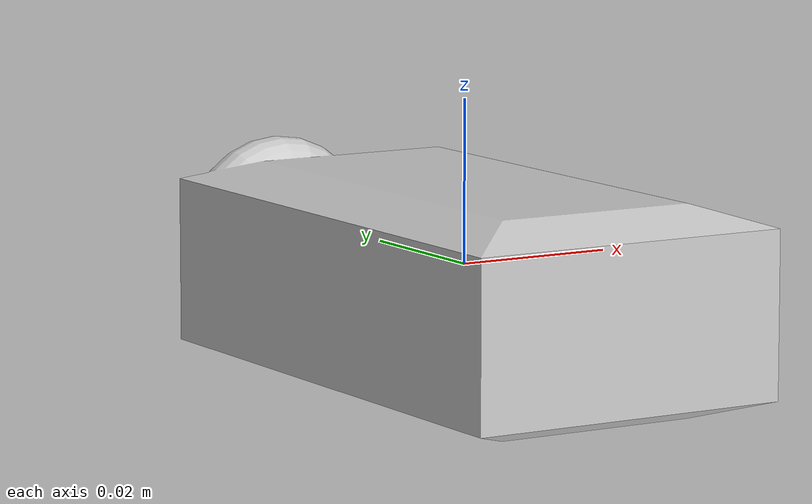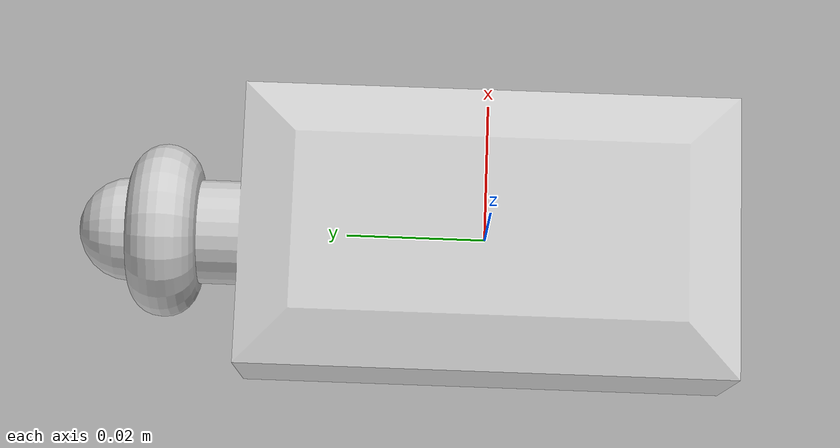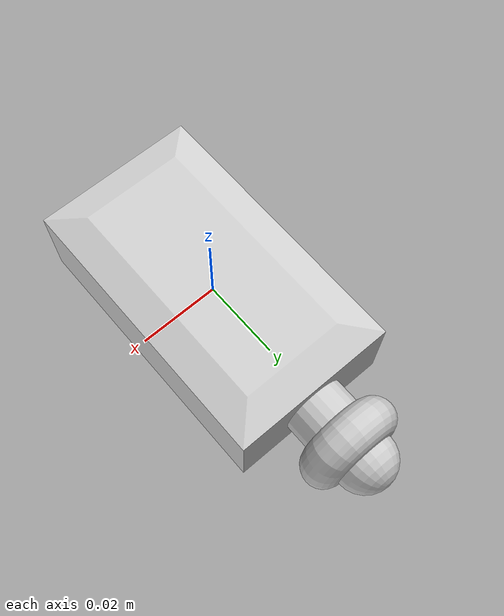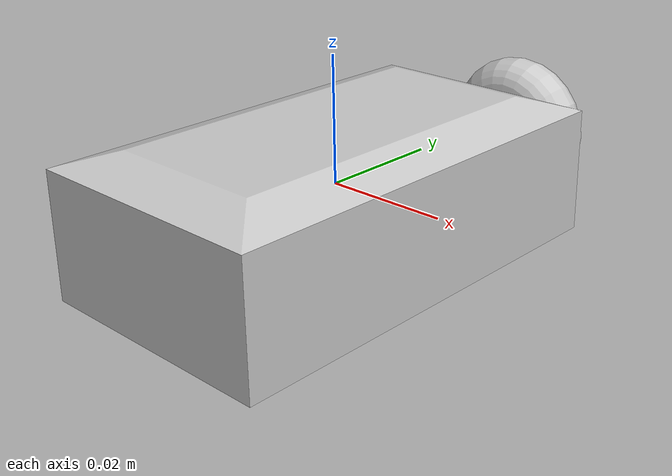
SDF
<?xml version="1.0" ?>
<sdf version="1.4">
  <model name="z_cos">
    <link name="z_cos_link">
      <inertial>
        <pose>-0.00 0.0 -0.005 0 0 0</pose>
        <mass>0.8</mass>
        <inertia>
          <ixx>0.001667</ixx>
	  <ixy>0.0</ixy>
	  <ixz>0.0</ixz>
	  <iyy>0.001667</iyy>
	  <iyz>0.0</iyz>
	  <izz>0.001667</izz>
	</inertia>
      </inertial>

      <visual name="z_cos_visual">
        <pose>-0.02 -0.036 0.01 -1.57079632679489 0 0 </pose>
        <material>
	  <lighting>1</lighting>
	  <ambient>0.2 0.2 0.2 1</ambient>
	  <diffuse>0.8 0.8 0.8 1</diffuse>
	  <specular>0.2 0.2 0.2 1</specular>
	  <emissive>0.85 0.85 0.85 1</emissive>
          <script>
            <uri>model://z_cos/materials/scripts</uri>
            <uri>model://z_cos/materials/textures</uri>
            <name>z_cos/Image</name>
          </script>
        </material>
        <geometry>
          <mesh>
            <uri>model://z_cos/meshes/z_cos.dae</uri>
	    <scale>0.4 0.4 0.4</scale>
          </mesh>
        </geometry>
      </visual>

      <collision name="z_cos_collision">
        <pose>-0.0 0.0 +0.0 0.0 0.0 0.0</pose>
        <geometry>
          <box>
            <size>0.040 0.065 0.028</size>
          </box>
        </geometry>
        <max_contacts>10</max_contacts>
        <surface>
          <contact>
	    <ode>
	      <max_vel>0.000</max_vel>
            </ode>
          </contact>
          <bounce/>
          <friction>
            <torsional>
              <ode/>
            </torsional>
            <ode>
              <mu>1</mu>
              <mu2>1</mu2>
            </ode>
          </friction>
        </surface>
      </collision>
      <self_collide>0</self_collide>
      <kinematic>0</kinematic>
    </link>
  </model>
</sdf>
